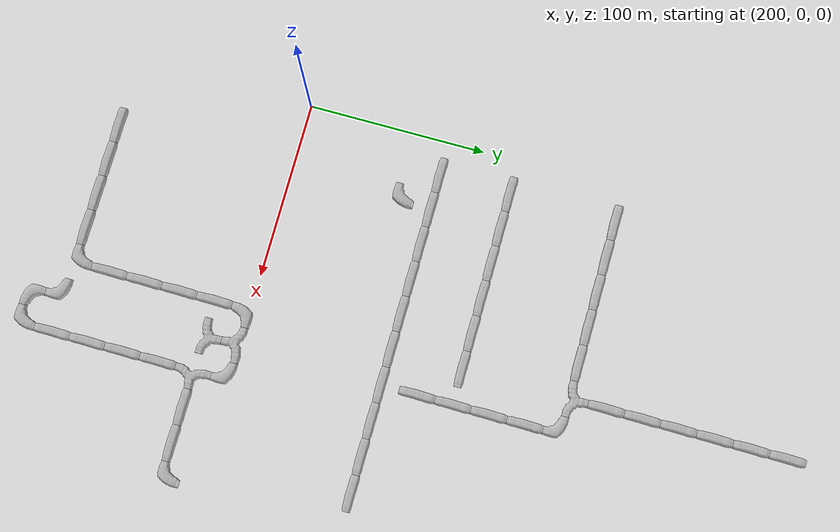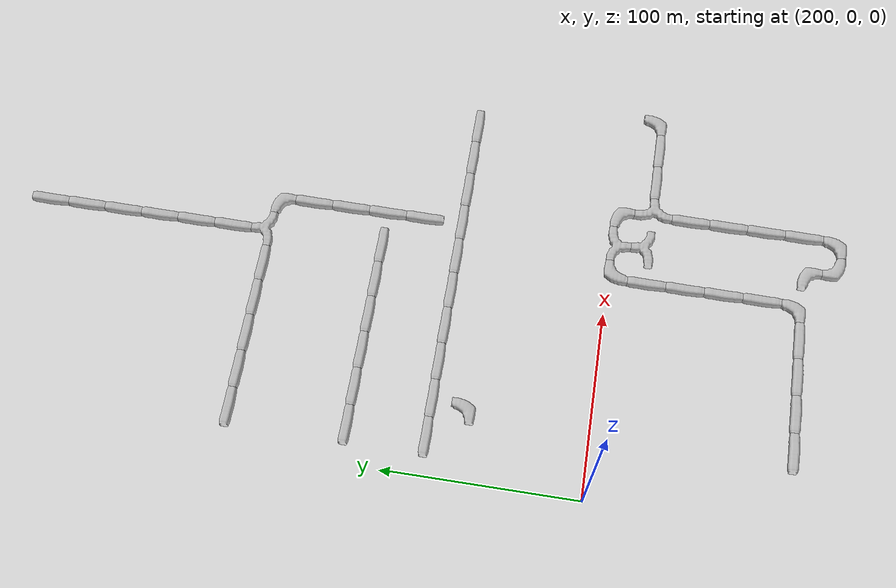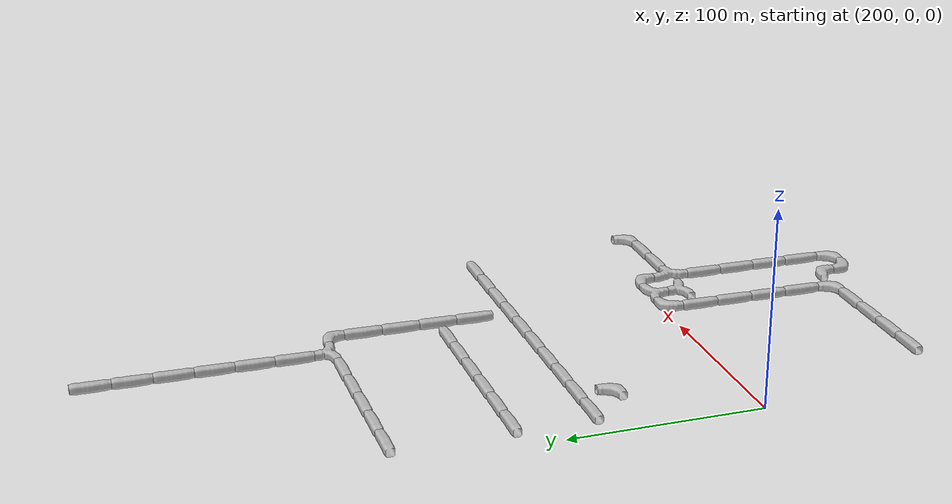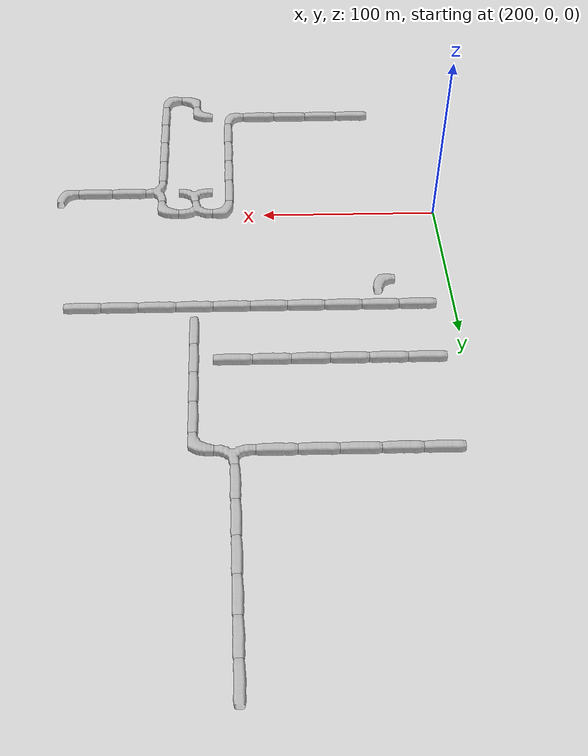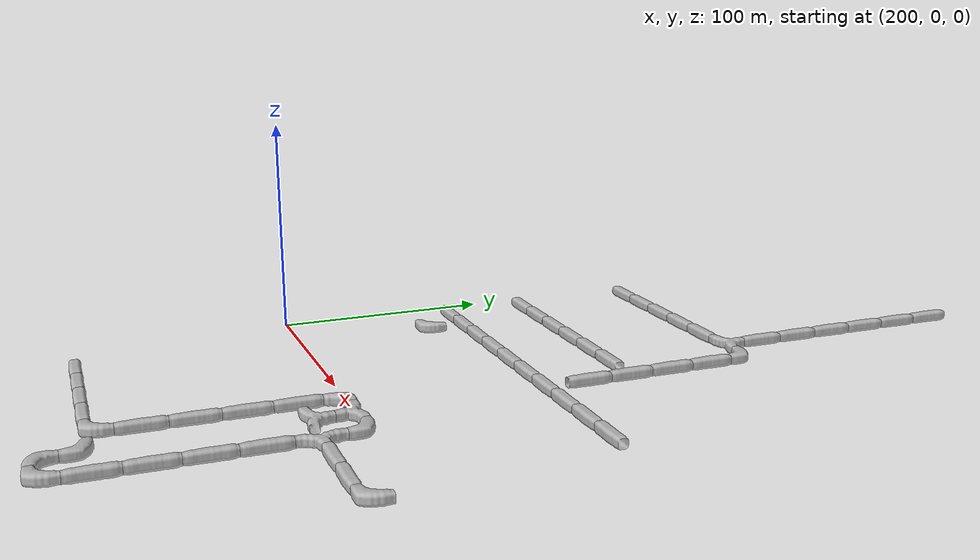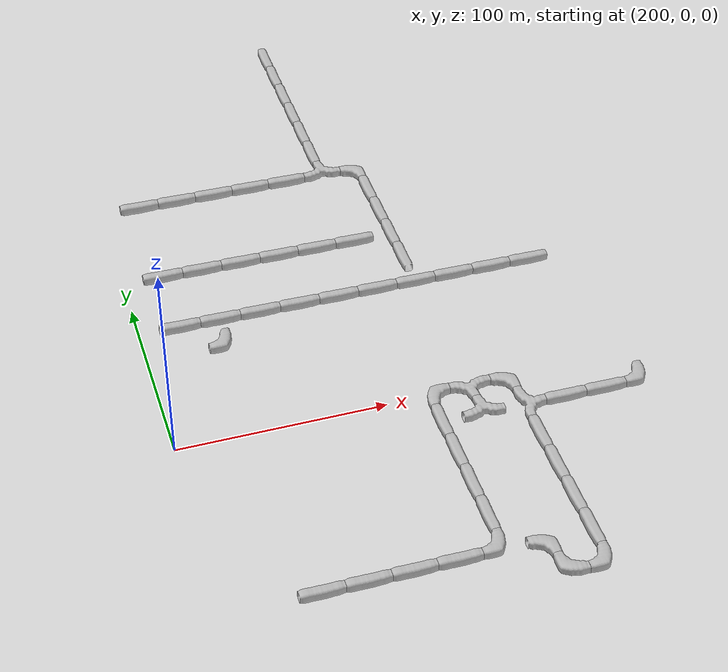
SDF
<sdf version="1.6">
 <world name="cave_32000">
  <include>
   <static>true</static>
   <name>cave_12_-5</name>
   <pose>240 -100 0 0 0 1.5707963267948966</pose>
   <uri>model://cave_straight_20m</uri>
  </include>
  <include>
   <static>true</static>
   <name>cave_13_-5</name>
   <pose>260 -100 0 0 0 1.5707963267948966</pose>
   <uri>model://cave_straight_20m</uri>
  </include>
  <include>
   <static>true</static>
   <name>cave_14_-5</name>
   <pose>280 -100 0 0 0 1.5707963267948966</pose>
   <uri>model://cave_straight_20m</uri>
  </include>
  <include>
   <static>true</static>
   <name>cave_15_-5</name>
   <pose>300 -100 0 0 0 1.5707963267948966</pose>
   <uri>model://cave_straight_20m</uri>
  </include>
  <include>
   <static>true</static>
   <name>cave_16_-5</name>
   <pose>320 -100 0 0 0 1.5707963267948966</pose>
   <uri>model://cave_L_20m</uri>
  </include>
  <include>
   <static>true</static>
   <name>cave_16_-4</name>
   <pose>320 -80 0 0 0 0.0</pose>
   <uri>model://cave_straight_20m</uri>
  </include>
  <include>
   <static>true</static>
   <name>cave_16_-3</name>
   <pose>320 -60 0 0 0 0.0</pose>
   <uri>model://cave_straight_20m</uri>
  </include>
  <include>
   <static>true</static>
   <name>cave_16_-2</name>
   <pose>320 -40 0 0 0 0.0</pose>
   <uri>model://cave_straight_20m</uri>
  </include>
  <include>
   <static>true</static>
   <name>cave_16_-1</name>
   <pose>320 -20 0 0 0 0.0</pose>
   <uri>model://cave_straight_20m</uri>
  </include>
  <include>
   <static>true</static>
   <name>cave_16_0</name>
   <pose>320 0 0 0 0 -1.5707963267948966</pose>
   <uri>model://cave_L_20m</uri>
  </include>
  <include>
   <static>true</static>
   <name>cave_17_0</name>
   <pose>340 0 0 0 0 3.141592653589793</pose>
   <uri>model://cave_3way_20m</uri>
  </include>
  <include>
   <static>true</static>
   <name>cave_18_0</name>
   <pose>360 0 0 0 0 3.141592653589793</pose>
   <uri>model://cave_L_20m</uri>
  </include>
  <include>
   <static>true</static>
   <name>cave_18_-1</name>
   <pose>360 -20 0 0 0 -1.5707963267948966</pose>
   <uri>model://cave_3way_20m</uri>
  </include>
  <include>
   <static>true</static>
   <name>cave_19_-1</name>
   <pose>380 -20 0 0 0 1.5707963267948966</pose>
   <uri>model://cave_straight_20m</uri>
  </include>
  <include>
   <static>true</static>
   <name>cave_20_-1</name>
   <pose>400 -20 0 0 0 1.5707963267948966</pose>
   <uri>model://cave_straight_20m</uri>
  </include>
  <include>
   <static>true</static>
   <name>cave_21_-1</name>
   <pose>420 -20 0 0 0 1.5707963267948966</pose>
   <uri>model://cave_L_20m</uri>
  </include>
  <include>
   <static>true</static>
   <name>cave_20_4</name>
   <pose>400 80 0 0 0 1.5707963267948966</pose>
   <uri>model://cave_straight_20m</uri>
  </include>
  <include>
   <static>true</static>
   <name>cave_19_4</name>
   <pose>380 80 0 0 0 1.5707963267948966</pose>
   <uri>model://cave_straight_20m</uri>
  </include>
  <include>
   <static>true</static>
   <name>cave_18_4</name>
   <pose>360 80 0 0 0 1.5707963267948966</pose>
   <uri>model://cave_straight_20m</uri>
  </include>
  <include>
   <static>true</static>
   <name>cave_17_4</name>
   <pose>340 80 0 0 0 1.5707963267948966</pose>
   <uri>model://cave_straight_20m</uri>
  </include>
  <include>
   <static>true</static>
   <name>cave_16_4</name>
   <pose>320 80 0 0 0 1.5707963267948966</pose>
   <uri>model://cave_straight_20m</uri>
  </include>
  <include>
   <static>true</static>
   <name>cave_15_4</name>
   <pose>300 80 0 0 0 1.5707963267948966</pose>
   <uri>model://cave_straight_20m</uri>
  </include>
  <include>
   <static>true</static>
   <name>cave_14_4</name>
   <pose>280 80 0 0 0 1.5707963267948966</pose>
   <uri>model://cave_straight_20m</uri>
  </include>
  <include>
   <static>true</static>
   <name>cave_13_4</name>
   <pose>260 80 0 0 0 1.5707963267948966</pose>
   <uri>model://cave_straight_20m</uri>
  </include>
  <include>
   <static>true</static>
   <name>cave_12_4</name>
   <pose>240 80 0 0 0 1.5707963267948966</pose>
   <uri>model://cave_straight_20m</uri>
  </include>
  <include>
   <static>true</static>
   <name>cave_11_4</name>
   <pose>220 80 0 0 0 1.5707963267948966</pose>
   <uri>model://cave_straight_20m</uri>
  </include>
  <include>
   <static>true</static>
   <name>cave_12_3</name>
   <pose>240 60 0 0 0 1.5707963267948966</pose>
   <uri>model://cave_L_20m</uri>
  </include>
  <include>
   <static>true</static>
   <name>cave_18_-2</name>
   <pose>360 -40 0 0 0 0.0</pose>
   <uri>model://cave_straight_20m</uri>
  </include>
  <include>
   <static>true</static>
   <name>cave_18_-3</name>
   <pose>360 -60 0 0 0 0.0</pose>
   <uri>model://cave_straight_20m</uri>
  </include>
  <include>
   <static>true</static>
   <name>cave_18_-4</name>
   <pose>360 -80 0 0 0 0.0</pose>
   <uri>model://cave_straight_20m</uri>
  </include>
  <include>
   <static>true</static>
   <name>cave_18_-5</name>
   <pose>360 -100 0 0 0 0.0</pose>
   <uri>model://cave_straight_20m</uri>
  </include>
  <include>
   <static>true</static>
   <name>cave_18_-6</name>
   <pose>360 -120 0 0 0 1.5707963267948966</pose>
   <uri>model://cave_L_20m</uri>
  </include>
  <include>
   <static>true</static>
   <name>cave_17_-6</name>
   <pose>340 -120 0 0 0 0.0</pose>
   <uri>model://cave_L_20m</uri>
  </include>
  <include>
   <static>true</static>
   <name>cave_17_-5</name>
   <pose>340 -100 0 0 0 3.141592653589793</pose>
   <uri>model://cave_L_20m</uri>
  </include>
  <include>
   <static>true</static>
   <name>cave_17_-1</name>
   <pose>340 -20 0 0 0 0.0</pose>
   <uri>model://cave_3way_20m</uri>
  </include>
  <include>
   <static>true</static>
   <name>cave_16_15</name>
   <pose>320 300 0 0 0 0.0</pose>
   <uri>model://cave_straight_20m</uri>
  </include>
  <include>
   <static>true</static>
   <name>cave_16_14</name>
   <pose>320 280 0 0 0 0.0</pose>
   <uri>model://cave_straight_20m</uri>
  </include>
  <include>
   <static>true</static>
   <name>cave_16_13</name>
   <pose>320 260 0 0 0 0.0</pose>
   <uri>model://cave_straight_20m</uri>
  </include>
  <include>
   <static>true</static>
   <name>cave_16_12</name>
   <pose>320 240 0 0 0 0.0</pose>
   <uri>model://cave_straight_20m</uri>
  </include>
  <include>
   <static>true</static>
   <name>cave_16_11</name>
   <pose>320 220 0 0 0 0.0</pose>
   <uri>model://cave_straight_20m</uri>
  </include>
  <include>
   <static>true</static>
   <name>cave_16_10</name>
   <pose>320 200 0 0 0 0.0</pose>
   <uri>model://cave_straight_20m</uri>
  </include>
  <include>
   <static>true</static>
   <name>cave_16_9</name>
   <pose>320 180 0 0 0 0.0</pose>
   <uri>model://cave_3way_20m</uri>
  </include>
  <include>
   <static>true</static>
   <name>cave_17_9</name>
   <pose>340 180 0 0 0 3.141592653589793</pose>
   <uri>model://cave_L_20m</uri>
  </include>
  <include>
   <static>true</static>
   <name>cave_17_8</name>
   <pose>340 160 0 0 0 0.0</pose>
   <uri>model://cave_straight_20m</uri>
  </include>
  <include>
   <static>true</static>
   <name>cave_17_7</name>
   <pose>340 140 0 0 0 0.0</pose>
   <uri>model://cave_straight_20m</uri>
  </include>
  <include>
   <static>true</static>
   <name>cave_17_6</name>
   <pose>340 120 0 0 0 0.0</pose>
   <uri>model://cave_straight_20m</uri>
  </include>
  <include>
   <static>true</static>
   <name>cave_17_5</name>
   <pose>340 100 0 0 0 0.0</pose>
   <uri>model://cave_straight_20m</uri>
  </include>
  <include>
   <static>true</static>
   <name>cave_15_9</name>
   <pose>300 180 0 0 0 1.5707963267948966</pose>
   <uri>model://cave_straight_20m</uri>
  </include>
  <include>
   <static>true</static>
   <name>cave_14_9</name>
   <pose>280 180 0 0 0 1.5707963267948966</pose>
   <uri>model://cave_straight_20m</uri>
  </include>
  <include>
   <static>true</static>
   <name>cave_13_9</name>
   <pose>260 180 0 0 0 1.5707963267948966</pose>
   <uri>model://cave_straight_20m</uri>
  </include>
  <include>
   <static>true</static>
   <name>cave_12_9</name>
   <pose>240 180 0 0 0 1.5707963267948966</pose>
   <uri>model://cave_straight_20m</uri>
  </include>
  <include>
   <static>true</static>
   <name>cave_11_9</name>
   <pose>220 180 0 0 0 1.5707963267948966</pose>
   <uri>model://cave_straight_20m</uri>
  </include>
  <include>
   <static>true</static>
   <name>cave_11_6</name>
   <pose>220 120 0 0 0 1.5707963267948966</pose>
   <uri>model://cave_straight_20m</uri>
  </include>
  <include>
   <static>true</static>
   <name>cave_12_6</name>
   <pose>240 120 0 0 0 1.5707963267948966</pose>
   <uri>model://cave_straight_20m</uri>
  </include>
  <include>
   <static>true</static>
   <name>cave_13_6</name>
   <pose>260 120 0 0 0 1.5707963267948966</pose>
   <uri>model://cave_straight_20m</uri>
  </include>
  <include>
   <static>true</static>
   <name>cave_14_6</name>
   <pose>280 120 0 0 0 1.5707963267948966</pose>
   <uri>model://cave_straight_20m</uri>
  </include>
  <include>
   <static>true</static>
   <name>cave_15_6</name>
   <pose>300 120 0 0 0 1.5707963267948966</pose>
   <uri>model://cave_straight_20m</uri>
  </include>
  <include>
   <static>true</static>
   <name>cave_16_6</name>
   <pose>320 120 0 0 0 1.5707963267948966</pose>
   <uri>model://cave_straight_20m</uri>
  </include>
 </world>
</sdf>
